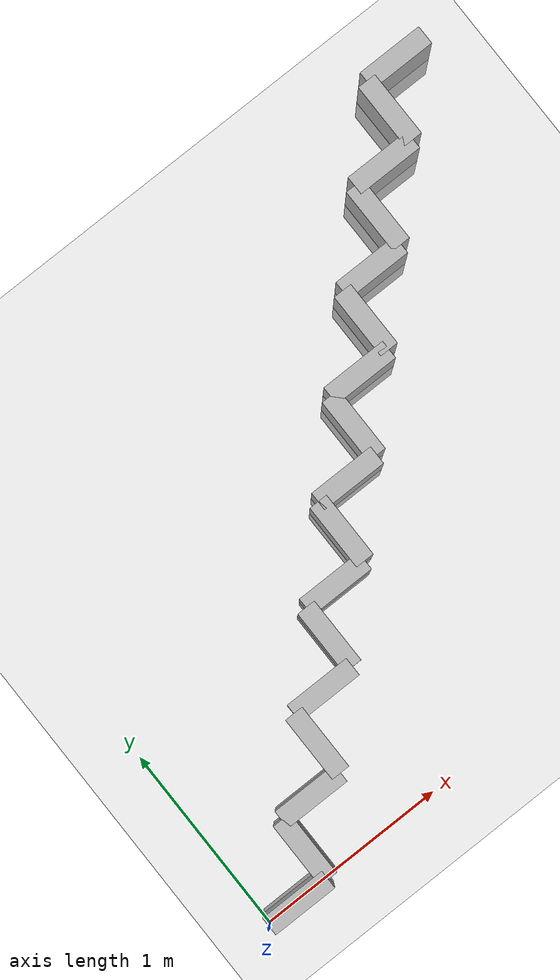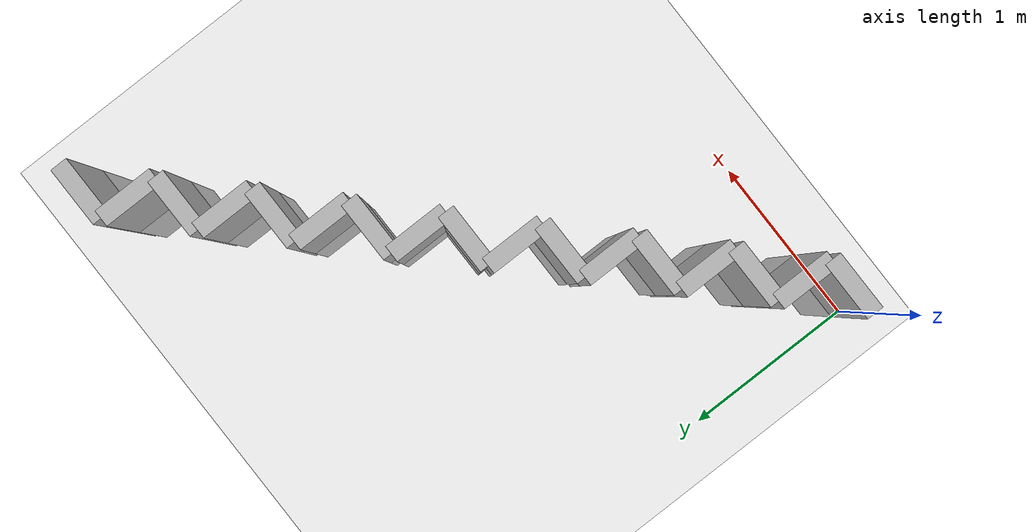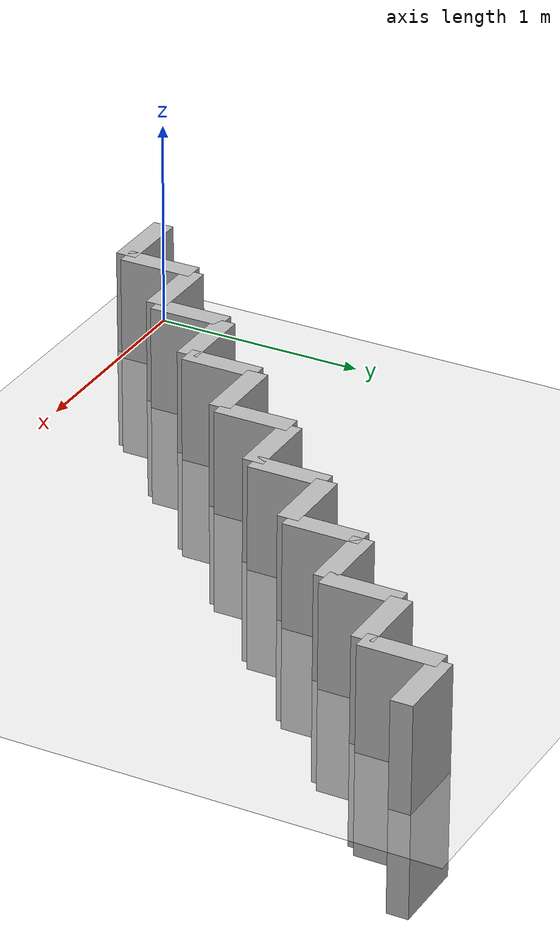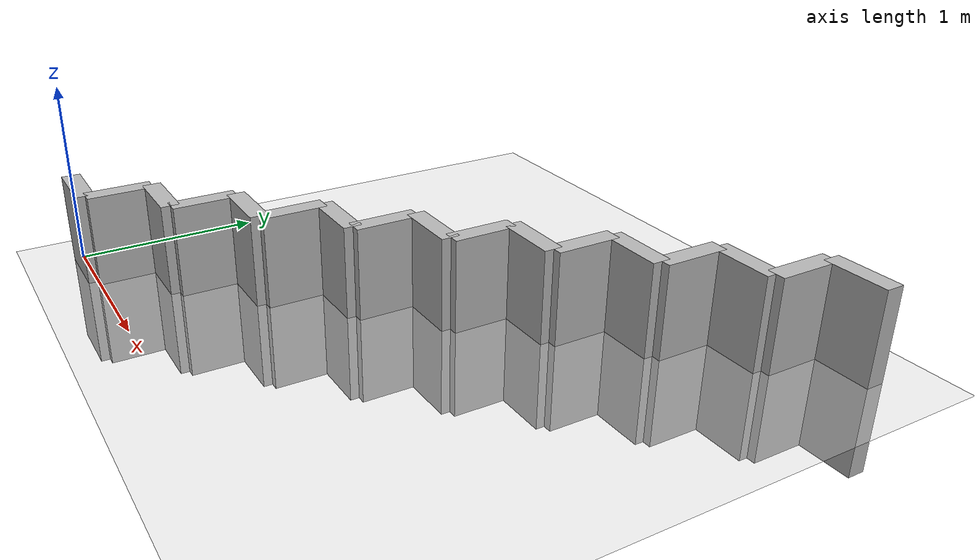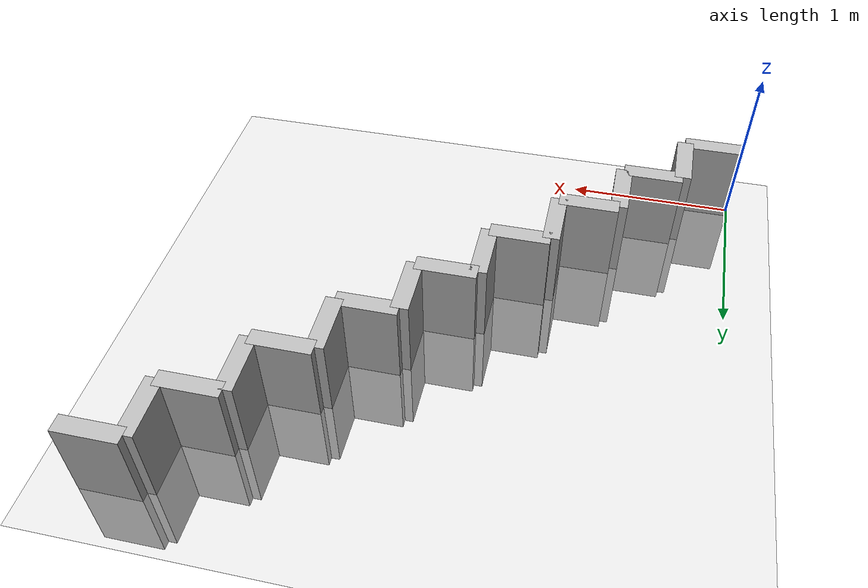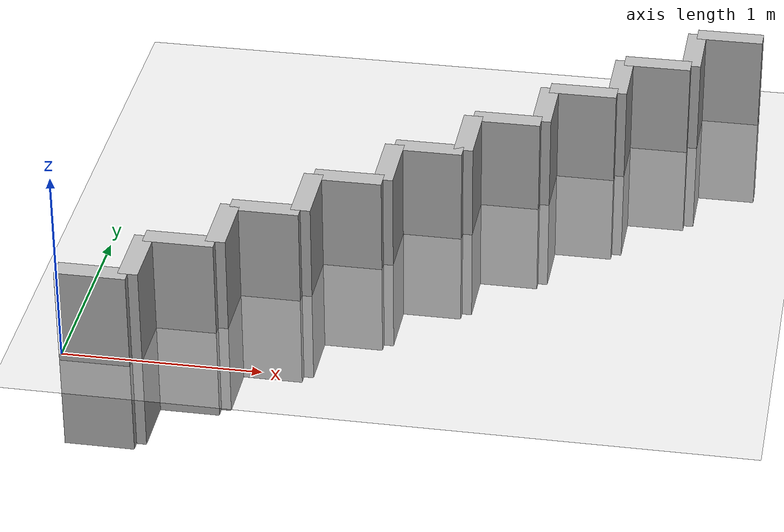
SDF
<?xml version="1.0" ?>
<sdf version="1.6">
  <world name="default">
    <include>
      <uri>model://ground_plane</uri>
    </include>
    <include>
      <uri>model://sun</uri>
    </include>

    <model name="wall_0">
      <static>true</static>
      <link name="link">
        <pose>0.17647058823529413 0 0 0 0 0</pose>
        <collision name="collision">
          <geometry>
            <box>
              <size>0.35294117647058826 0.1 1.0</size>
            </box>
          </geometry>
        </collision>
        <visual name="visual">
          <geometry>
            <box>
              <size>0.35294117647058826 0.1 1.0</size>
            </box>
          </geometry>
        </visual>
      </link>
    </model>

    <model name="wall_1">
      <static>true</static>
      <link name="link">
        <pose>0.35294117647058826 0.17647058823529413 0 0 0 1.57</pose>
        <collision name="collision">
          <geometry>
            <box>
              <size>0.35294117647058826 0.1 1.0</size>
            </box>
          </geometry>
        </collision>
        <visual name="visual">
          <geometry>
            <box>
              <size>0.35294117647058826 0.1 1.0</size>
            </box>
          </geometry>
        </visual>
      </link>
    </model>

    <model name="wall_2">
      <static>true</static>
      <link name="link">
        <pose>0.5294117647058824 0.35294117647058826 0 0 0 0</pose>
        <collision name="collision">
          <geometry>
            <box>
              <size>0.35294117647058826 0.1 1.0</size>
            </box>
          </geometry>
        </collision>
        <visual name="visual">
          <geometry>
            <box>
              <size>0.35294117647058826 0.1 1.0</size>
            </box>
          </geometry>
        </visual>
      </link>
    </model>

    <model name="wall_3">
      <static>true</static>
      <link name="link">
        <pose>0.7058823529411765 0.5294117647058824 0 0 0 1.57</pose>
        <collision name="collision">
          <geometry>
            <box>
              <size>0.35294117647058826 0.1 1.0</size>
            </box>
          </geometry>
        </collision>
        <visual name="visual">
          <geometry>
            <box>
              <size>0.35294117647058826 0.1 1.0</size>
            </box>
          </geometry>
        </visual>
      </link>
    </model>

    <model name="wall_4">
      <static>true</static>
      <link name="link">
        <pose>0.8823529411764707 0.7058823529411765 0 0 0 0</pose>
        <collision name="collision">
          <geometry>
            <box>
              <size>0.35294117647058826 0.1 1.0</size>
            </box>
          </geometry>
        </collision>
        <visual name="visual">
          <geometry>
            <box>
              <size>0.35294117647058826 0.1 1.0</size>
            </box>
          </geometry>
        </visual>
      </link>
    </model>

    <model name="wall_5">
      <static>true</static>
      <link name="link">
        <pose>1.0588235294117647 0.8823529411764707 0 0 0 1.57</pose>
        <collision name="collision">
          <geometry>
            <box>
              <size>0.35294117647058826 0.1 1.0</size>
            </box>
          </geometry>
        </collision>
        <visual name="visual">
          <geometry>
            <box>
              <size>0.35294117647058826 0.1 1.0</size>
            </box>
          </geometry>
        </visual>
      </link>
    </model>

    <model name="wall_6">
      <static>true</static>
      <link name="link">
        <pose>1.2352941176470589 1.0588235294117647 0 0 0 0</pose>
        <collision name="collision">
          <geometry>
            <box>
              <size>0.35294117647058826 0.1 1.0</size>
            </box>
          </geometry>
        </collision>
        <visual name="visual">
          <geometry>
            <box>
              <size>0.35294117647058826 0.1 1.0</size>
            </box>
          </geometry>
        </visual>
      </link>
    </model>

    <model name="wall_7">
      <static>true</static>
      <link name="link">
        <pose>1.411764705882353 1.2352941176470589 0 0 0 1.57</pose>
        <collision name="collision">
          <geometry>
            <box>
              <size>0.35294117647058826 0.1 1.0</size>
            </box>
          </geometry>
        </collision>
        <visual name="visual">
          <geometry>
            <box>
              <size>0.35294117647058826 0.1 1.0</size>
            </box>
          </geometry>
        </visual>
      </link>
    </model>

    <model name="wall_8">
      <static>true</static>
      <link name="link">
        <pose>1.5882352941176472 1.411764705882353 0 0 0 0</pose>
        <collision name="collision">
          <geometry>
            <box>
              <size>0.35294117647058826 0.1 1.0</size>
            </box>
          </geometry>
        </collision>
        <visual name="visual">
          <geometry>
            <box>
              <size>0.35294117647058826 0.1 1.0</size>
            </box>
          </geometry>
        </visual>
      </link>
    </model>

    <model name="wall_9">
      <static>true</static>
      <link name="link">
        <pose>1.7647058823529413 1.5882352941176472 0 0 0 1.57</pose>
        <collision name="collision">
          <geometry>
            <box>
              <size>0.35294117647058826 0.1 1.0</size>
            </box>
          </geometry>
        </collision>
        <visual name="visual">
          <geometry>
            <box>
              <size>0.35294117647058826 0.1 1.0</size>
            </box>
          </geometry>
        </visual>
      </link>
    </model>

    <model name="wall_10">
      <static>true</static>
      <link name="link">
        <pose>1.9411764705882355 1.7647058823529413 0 0 0 0</pose>
        <collision name="collision">
          <geometry>
            <box>
              <size>0.35294117647058826 0.1 1.0</size>
            </box>
          </geometry>
        </collision>
        <visual name="visual">
          <geometry>
            <box>
              <size>0.35294117647058826 0.1 1.0</size>
            </box>
          </geometry>
        </visual>
      </link>
    </model>

    <model name="wall_11">
      <static>true</static>
      <link name="link">
        <pose>2.1176470588235294 1.9411764705882355 0 0 0 1.57</pose>
        <collision name="collision">
          <geometry>
            <box>
              <size>0.35294117647058826 0.1 1.0</size>
            </box>
          </geometry>
        </collision>
        <visual name="visual">
          <geometry>
            <box>
              <size>0.35294117647058826 0.1 1.0</size>
            </box>
          </geometry>
        </visual>
      </link>
    </model>

    <model name="wall_12">
      <static>true</static>
      <link name="link">
        <pose>2.2941176470588234 2.1176470588235294 0 0 0 0</pose>
        <collision name="collision">
          <geometry>
            <box>
              <size>0.35294117647058826 0.1 1.0</size>
            </box>
          </geometry>
        </collision>
        <visual name="visual">
          <geometry>
            <box>
              <size>0.35294117647058826 0.1 1.0</size>
            </box>
          </geometry>
        </visual>
      </link>
    </model>

    <model name="wall_13">
      <static>true</static>
      <link name="link">
        <pose>2.4705882352941173 2.2941176470588234 0 0 0 1.57</pose>
        <collision name="collision">
          <geometry>
            <box>
              <size>0.35294117647058826 0.1 1.0</size>
            </box>
          </geometry>
        </collision>
        <visual name="visual">
          <geometry>
            <box>
              <size>0.35294117647058826 0.1 1.0</size>
            </box>
          </geometry>
        </visual>
      </link>
    </model>

    <model name="wall_14">
      <static>true</static>
      <link name="link">
        <pose>2.6470588235294112 2.4705882352941173 0 0 0 0</pose>
        <collision name="collision">
          <geometry>
            <box>
              <size>0.35294117647058826 0.1 1.0</size>
            </box>
          </geometry>
        </collision>
        <visual name="visual">
          <geometry>
            <box>
              <size>0.35294117647058826 0.1 1.0</size>
            </box>
          </geometry>
        </visual>
      </link>
    </model>

    <model name="wall_15">
      <static>true</static>
      <link name="link">
        <pose>2.823529411764705 2.6470588235294112 0 0 0 1.57</pose>
        <collision name="collision">
          <geometry>
            <box>
              <size>0.35294117647058826 0.1 1.0</size>
            </box>
          </geometry>
        </collision>
        <visual name="visual">
          <geometry>
            <box>
              <size>0.35294117647058826 0.1 1.0</size>
            </box>
          </geometry>
        </visual>
      </link>
    </model>

    <model name="wall_16">
      <static>true</static>
      <link name="link">
        <pose>2.999999999999999 2.823529411764705 0 0 0 0</pose>
        <collision name="collision">
          <geometry>
            <box>
              <size>0.35294117647058826 0.1 1.0</size>
            </box>
          </geometry>
        </collision>
        <visual name="visual">
          <geometry>
            <box>
              <size>0.35294117647058826 0.1 1.0</size>
            </box>
          </geometry>
        </visual>
      </link>
    </model>

  </world>
</sdf>
